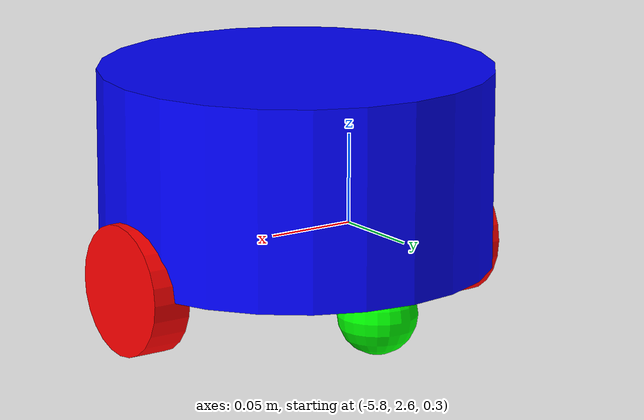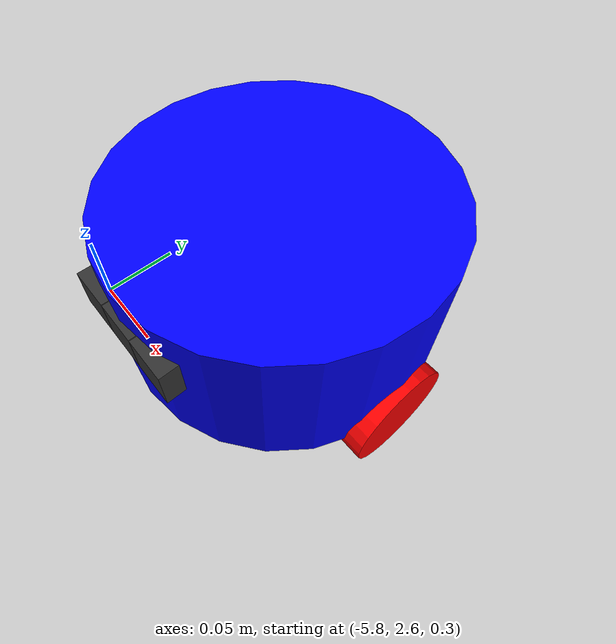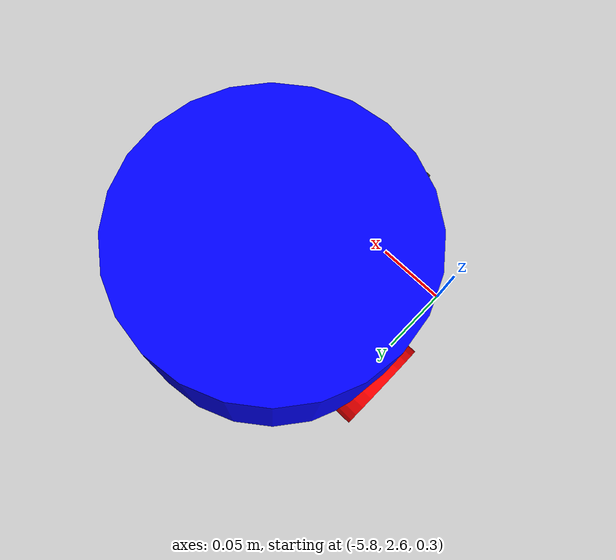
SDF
<sdf version="1.9">
 <world name="factory_01_world">
  <physics name="1ms" type="ignored">
   <max_step_size>0.001</max_step_size>
   <real_time_factor>1</real_time_factor>
  </physics>
  <plugin filename="gz-sim-physics-system" name="gz::sim::systems::Physics"/>
  <plugin filename="gz-sim-user-commands-system" name="gz::sim::systems::UserCommands"/>
  <plugin filename="gz-sim-scene-broadcaster-system" name="gz::sim::systems::SceneBroadcaster"/>
  <plugin filename="gz-sim-imu-system" name="gz::sim::systems::Imu"/>
  <plugin filename="gz-sim-sensors-system" name="gz::sim::systems::Sensors">
   <render_engine>ogre2</render_engine>
  </plugin>
  <scene>
   <ambient>1 1 1 1</ambient>
   <background>0.3 0.7 0.9 1</background>
   <shadows>0</shadows>
   <grid>1</grid>
  </scene>
  <light name="sun" type="directional">
   <pose>0 0 10 0 0 0</pose>
   <direction>-0.3 0.3 -1</direction>
   <diffuse>1 1 1 1</diffuse>
   <specular>0.1 0.1 0.1 1</specular>
   <attenuation><range>1000</range></attenuation>
   <intensity>3</intensity>
  </light>
  <model name="sky_shell">
   <static>1</static>
   <link name="link">
    <visual name="ceiling">
     <pose>35 0 12 0 0 0</pose>
     <geometry><plane><normal>0 0 -1</normal><size>220 160</size></plane></geometry>
     <material><ambient>0.6 0.6 0.6 1</ambient><diffuse>0.6 0.6 0.6 1</diffuse></material>
    </visual>
   </link>
  </model>
  <model name="ground_plane">
   <static>1</static>
   <link name="link">
    <collision name="collision">
     <geometry><plane><normal>0 0 1</normal><size>1 1</size></plane></geometry>
    </collision>
   </link>
   <pose>0 0 0.002 0 0 0</pose>
  </model>
  <model name="lekiwi" canonical_link="chassis">
   <plugin filename="gz-sim-diff-drive-system" name="gz::sim::systems::DiffDrive">
    <left_joint>left_wheel_joint</left_joint>
    <right_joint>right_wheel_joint</right_joint>
    <wheel_separation>0.19</wheel_separation>
    <wheel_radius>0.033</wheel_radius>
    <odom_publish_frequency>20</odom_publish_frequency>
    <topic>cmd_vel</topic>
   </plugin>
   <pose relative_to="world">-5.71 2.68 0.28 0 0 -1.57</pose>
   <link name="chassis">
    <pose relative_to="__model__">0 0 0.083 0 0 0</pose>
    <sensor name="imu_sensor" type="imu">
     <always_on>1</always_on>
     <update_rate>200</update_rate>
     <visualize>true</visualize>
     <topic>/camera/camera/imu</topic>
     <pose>0.05 0 0.02 1.5708 3.14159 1.5708</pose>
    </sensor>
    <inertial>
     <mass>1.0</mass>
     <inertia><ixx>0.0033</ixx><ixy>0</ixy><ixz>0</ixz><iyy>0.0033</iyy><iyz>0</iyz><izz>0.005</izz></inertia>
    </inertial>
    <visual name="visual">
     <geometry><cylinder><radius>0.1</radius><length>0.1</length></cylinder></geometry>
     <material>
      <ambient>0.0 0.0 1.0 1</ambient>
      <diffuse>0.0 0.0 1.0 1</diffuse>
      <specular>0.0 0.0 1.0 1</specular>
     </material>
    </visual>
    <collision name="collision">
     <geometry><cylinder><radius>0.1</radius><length>0.1</length></cylinder></geometry>
    </collision>
   </link>
   <link name="infra1_link">
    <pose relative_to="chassis">0.09 0.0255 0.017 0 0 0</pose>
    <inertial>
     <mass>0.03</mass>
     <inertia><ixx>1e-5</ixx><ixy>0</ixy><ixz>0</ixz><iyy>1e-5</iyy><iyz>0</iyz><izz>1e-5</izz></inertia>
    </inertial>
    <visual name="visual">
     <geometry><box><size>0.025 0.025 0.025</size></box></geometry>
     <material>
      <ambient>0.2 0.2 0.2 1</ambient>
      <diffuse>0.2 0.2 0.2 1</diffuse>
      <specular>0.2 0.2 0.2 1</specular>
     </material>
    </visual>
    <collision name="collision"><geometry><box><size>0.025 0.025 0.025</size></box></geometry></collision>
    <sensor name="infra1" type="camera">
     <camera>
      <horizontal_fov>1.5708</horizontal_fov>
      <image><width>544</width><height>480</height><format>L8</format></image>
      <clip><near>0.1</near><far>100</far></clip>
     </camera>
     <always_on>1</always_on>
     <update_rate>15</update_rate>
     <visualize>true</visualize>
     <topic>/camera/camera/infra1/image_rect_raw</topic>
    </sensor>
   </link>
   <link name="infra2_link">
    <pose relative_to="chassis">0.09 -0.0255 0.017 0 0 0</pose>
    <inertial>
     <mass>0.03</mass>
     <inertia><ixx>1e-5</ixx><ixy>0</ixy><ixz>0</ixz><iyy>1e-5</iyy><iyz>0</iyz><izz>1e-5</izz></inertia>
    </inertial>
    <visual name="visual">
     <geometry><box><size>0.025 0.025 0.025</size></box></geometry>
     <material>
      <ambient>0.2 0.2 0.2 1</ambient>
      <diffuse>0.2 0.2 0.2 1</diffuse>
      <specular>0.2 0.2 0.2 1</specular>
     </material>
    </visual>
    <collision name="collision"><geometry><box><size>0.025 0.025 0.025</size></box></geometry></collision>
    <sensor name="infra2" type="camera">
     <camera>
      <horizontal_fov>1.5708</horizontal_fov>
      <image><width>544</width><height>480</height><format>L8</format></image>
      <clip><near>0.1</near><far>100</far></clip>
     </camera>
     <always_on>1</always_on>
     <update_rate>15</update_rate>
     <visualize>true</visualize>
     <topic>/camera/camera/infra2/image_rect_raw</topic>
    </sensor>
   </link>
   <link name="color_link">
    <pose relative_to="chassis">0.09 0 0.017 0 0 0</pose>
    <inertial>
     <mass>0.03</mass>
     <inertia><ixx>1e-5</ixx><ixy>0</ixy><ixz>0</ixz><iyy>1e-5</iyy><iyz>0</iyz><izz>1e-5</izz></inertia>
    </inertial>
    <visual name="visual">
     <geometry><box><size>0.025 0.025 0.025</size></box></geometry>
     <material>
      <ambient>0.2 0.2 0.2 1</ambient>
      <diffuse>0.2 0.2 0.2 1</diffuse>
      <specular>0.2 0.2 0.2 1</specular>
     </material>
    </visual>
    <collision name="collision"><geometry><box><size>0.025 0.025 0.025</size></box></geometry></collision>
    <sensor name="color" type="camera">
     <camera>
      <horizontal_fov>1.5708</horizontal_fov>
      <image><width>544</width><height>480</height><format>RGB_INT8</format></image>
      <clip><near>0.1</near><far>100</far></clip>
     </camera>
     <always_on>1</always_on>
     <update_rate>15</update_rate>
     <visualize>true</visualize>
     <topic>/camera/camera/color/image_raw</topic>
    </sensor>
   </link>
   <link name="left_wheel">
    <pose relative_to="chassis">0 0.095 -0.05 -1.5707 0 0</pose>
    <inertial>
     <mass>0.05</mass>
     <inertia><ixx>1.5e-5</ixx><ixy>0</ixy><ixz>0</ixz><iyy>1.5e-5</iyy><iyz>0</iyz><izz>2.7e-5</izz></inertia>
    </inertial>
    <visual name="visual">
     <geometry><cylinder><radius>0.033</radius><length>0.02</length></cylinder></geometry>
     <material>
      <ambient>1.0 0.0 0.0 1</ambient>
      <diffuse>1.0 0.0 0.0 1</diffuse>
      <specular>1.0 0.0 0.0 1</specular>
     </material>
    </visual>
    <collision name="collision">
     <geometry><cylinder><radius>0.033</radius><length>0.02</length></cylinder></geometry>
    </collision>
   </link>
   <link name="right_wheel">
    <pose relative_to="chassis">0 -0.095 -0.05 -1.5707 0 0</pose>
    <inertial>
     <mass>0.05</mass>
     <inertia><ixx>1.5e-5</ixx><ixy>0</ixy><ixz>0</ixz><iyy>1.5e-5</iyy><iyz>0</iyz><izz>2.7e-5</izz></inertia>
    </inertial>
    <visual name="visual">
     <geometry><cylinder><radius>0.033</radius><length>0.02</length></cylinder></geometry>
     <material>
      <ambient>1.0 0.0 0.0 1</ambient>
      <diffuse>1.0 0.0 0.0 1</diffuse>
      <specular>1.0 0.0 0.0 1</specular>
     </material>
    </visual>
    <collision name="collision">
     <geometry><cylinder><radius>0.033</radius><length>0.02</length></cylinder></geometry>
    </collision>
   </link>
   <joint name="left_wheel_joint" type="revolute">
    <parent>chassis</parent>
    <child>left_wheel</child>
    <axis><xyz>0 0 1</xyz></axis>
   </joint>
   <joint name="right_wheel_joint" type="revolute">
    <parent>chassis</parent>
    <child>right_wheel</child>
    <axis><xyz>0 0 1</xyz></axis>
   </joint>
   <frame name="caster_frame" attached_to="chassis"><pose>-0.07 0 -0.062 0 0 0</pose></frame>
   <link name="caster">
    <pose relative_to="caster_frame"/>
    <inertial>
     <mass>0.05</mass>
     <inertia><ixx>8e-6</ixx><ixy>0</ixy><ixz>0</ixz><iyy>8e-6</iyy><iyz>0</iyz><izz>8e-6</izz></inertia>
    </inertial>
    <visual name="visual">
     <geometry><sphere><radius>0.02</radius></sphere></geometry>
     <material>
      <ambient>0.0 1 0.0 1</ambient>
      <diffuse>0.0 1 0.0 1</diffuse>
      <specular>0.0 1 0.0 1</specular>
     </material>
    </visual>
    <collision name="collision"><geometry><sphere><radius>0.02</radius></sphere></geometry></collision>
   </link>
   <joint name="caster_wheel" type="ball"><parent>chassis</parent><child>caster</child></joint>
   <frame name="front_caster_frame" attached_to="chassis"><pose>0.07 0 -0.062 0 0 0</pose></frame>
   <link name="front_caster">
    <pose relative_to="front_caster_frame"/>
    <inertial>
     <mass>0.05</mass>
     <inertia><ixx>8e-6</ixx><ixy>0</ixy><ixz>0</ixz><iyy>8e-6</iyy><iyz>0</iyz><izz>8e-6</izz></inertia>
    </inertial>
    <visual name="visual">
     <geometry><sphere><radius>0.02</radius></sphere></geometry>
     <material>
      <ambient>0.0 1 0.0 1</ambient>
      <diffuse>0.0 1 0.0 1</diffuse>
      <specular>0.0 1 0.0 1</specular>
     </material>
    </visual>
    <collision name="collision"><geometry><sphere><radius>0.02</radius></sphere></geometry></collision>
   </link>
   <joint name="front_caster_wheel" type="ball"><parent>chassis</parent><child>front_caster</child></joint>
   <joint name="infra1_joint" type="fixed"><parent>chassis</parent><child>infra1_link</child></joint>
   <joint name="infra2_joint" type="fixed"><parent>chassis</parent><child>infra2_link</child></joint>
   <joint name="color_joint" type="fixed"><parent>chassis</parent><child>color_link</child></joint>
  </model>
 </world>
</sdf>
